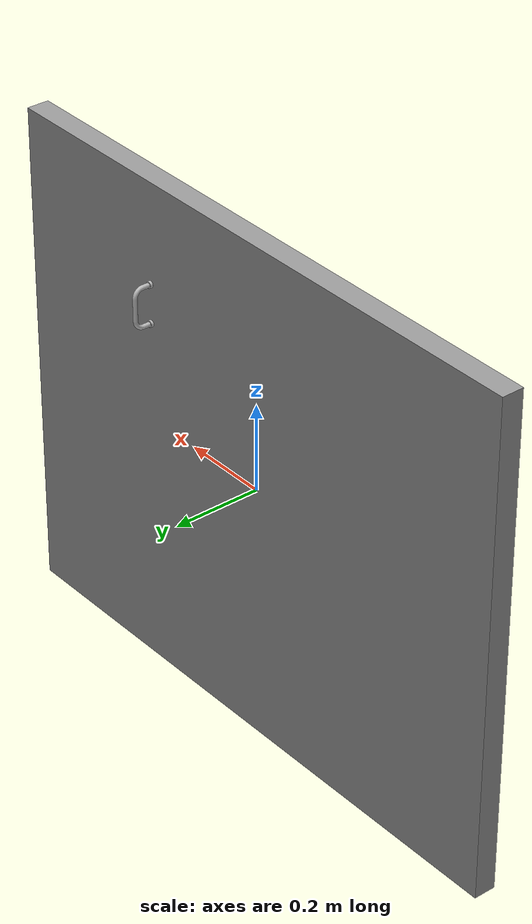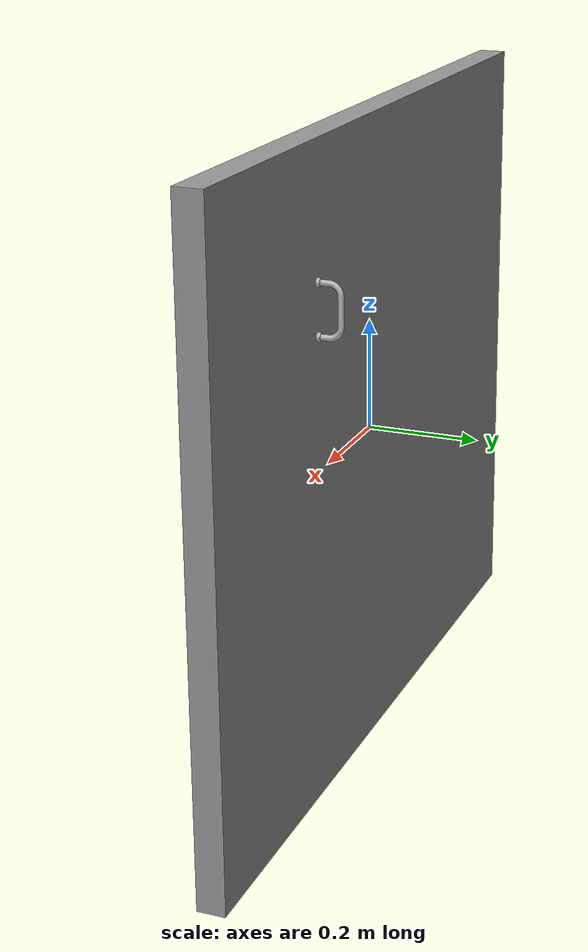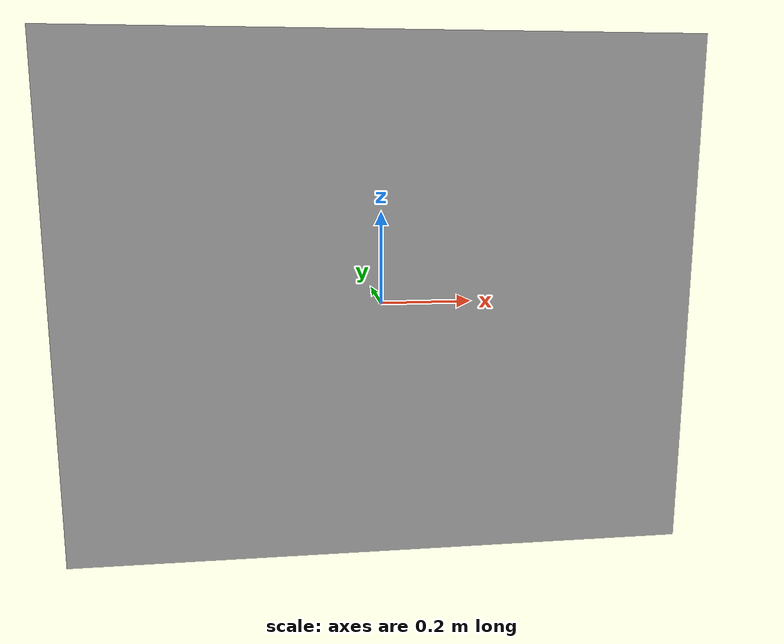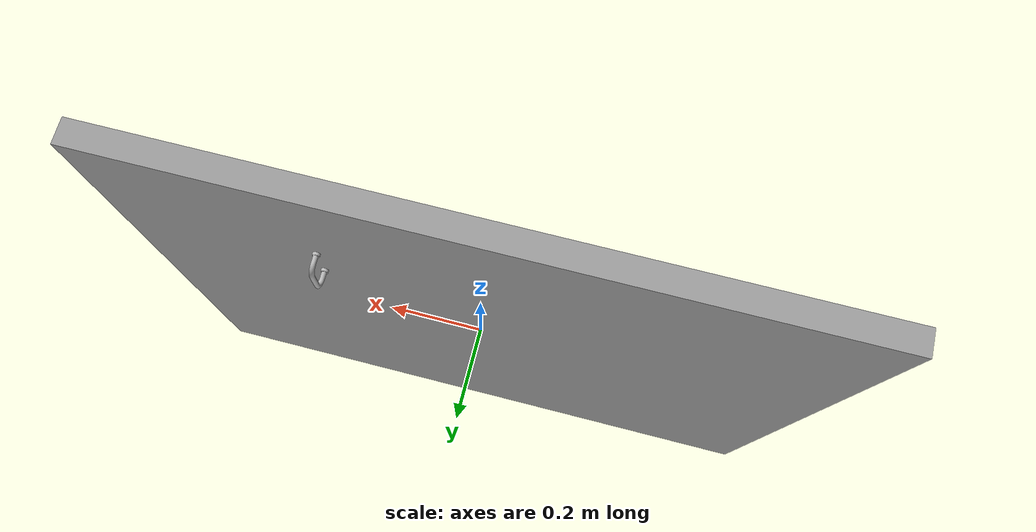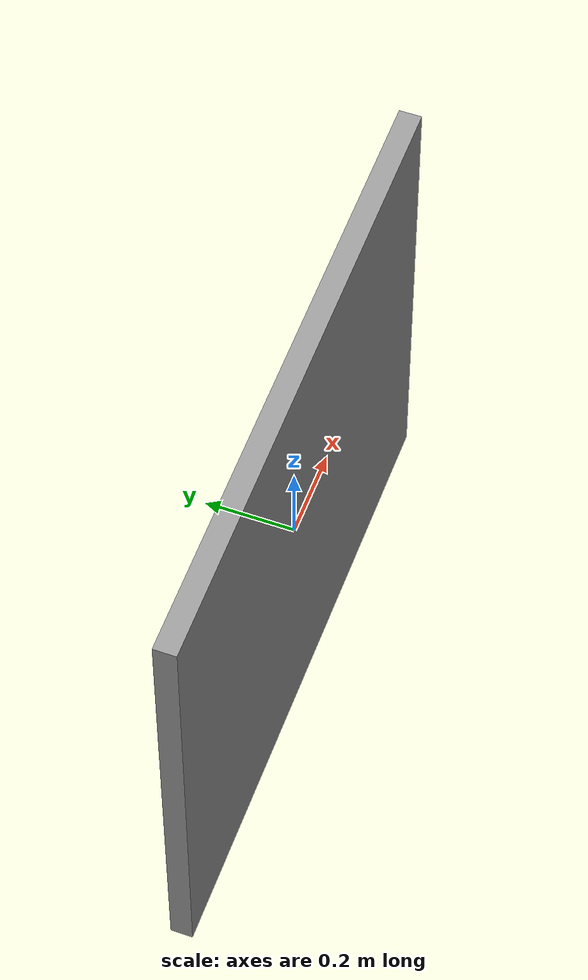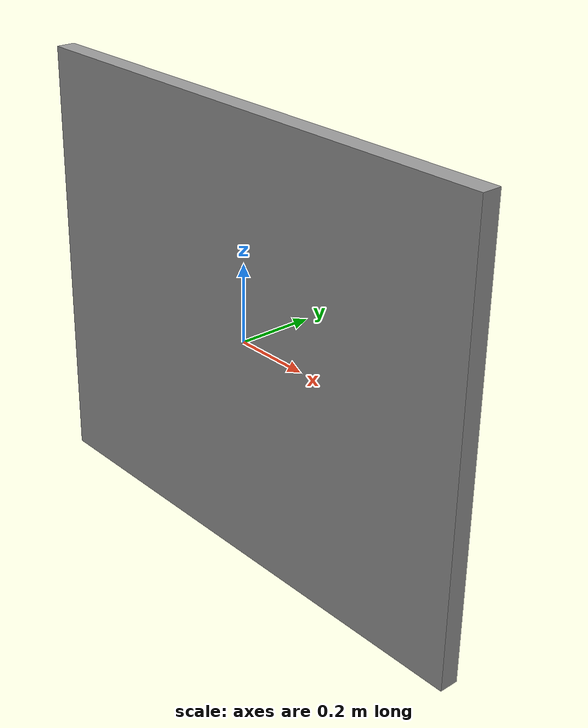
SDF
<?xml version='1.0'?>
<sdf version='1.6'>
  <model name='pull_box'>
    <link name='link_0'>
      <inertial>
        <mass>1</mass>
        <inertia>
          <ixx>0.166667</ixx>
          <ixy>0</ixy>
          <ixz>0</ixz>
          <iyy>0.166667</iyy>
          <iyz>0</iyz>
          <izz>0.166667</izz>
        </inertia>
      </inertial>
      <pose frame=''>-0 4e-06 0 0 -0 0</pose>
      <visual name='visual'>
        <pose frame=''>0 0 0 0 -0 0</pose>
        <geometry>
          <box>
            <size>1.4 0.05 1.15</size>
          </box>
        </geometry>
        <material>
          <lighting>1</lighting>
          <script>
            <uri>file://media/materials/scripts/gazebo.material</uri>
            <name>Gazebo/Grey</name>
          </script>
          <shader type='pixel'/>
        </material>
        <transparency>0</transparency>
        <cast_shadows>1</cast_shadows>
      </visual>
      <collision name='collision'>
        <laser_retro>0</laser_retro>
        <max_contacts>10</max_contacts>
        <pose frame=''>0 0 0 0 -0 0</pose>
        <geometry>
          <box>
            <size>1.4 0.05 1.15</size>
          </box>
        </geometry>
        <surface>
          <friction>
            <ode>
              <mu>1</mu>
              <mu2>1</mu2>
              <fdir1>0 0 0</fdir1>
              <slip1>0</slip1>
              <slip2>0</slip2>
            </ode>
            <torsional>
              <coefficient>1</coefficient>
              <patch_radius>0</patch_radius>
              <surface_radius>0</surface_radius>
              <use_patch_radius>1</use_patch_radius>
              <ode>
                <slip>0</slip>
              </ode>
            </torsional>
          </friction>
          <bounce>
            <restitution_coefficient>0</restitution_coefficient>
            <threshold>1e+06</threshold>
          </bounce>
          <contact>
            <collide_without_contact>0</collide_without_contact>
            <collide_without_contact_bitmask>1</collide_without_contact_bitmask>
            <collide_bitmask>1</collide_bitmask>
            <ode>
              <soft_cfm>0</soft_cfm>
              <soft_erp>0.2</soft_erp>
              <kp>1e+13</kp>
              <kd>1</kd>
              <max_vel>0.01</max_vel>
              <min_depth>0</min_depth>
            </ode>
            <bullet>
              <split_impulse>1</split_impulse>
              <split_impulse_penetration_threshold>-0.01</split_impulse_penetration_threshold>
              <soft_cfm>0</soft_cfm>
              <soft_erp>0.2</soft_erp>
              <kp>1e+13</kp>
              <kd>1</kd>
            </bullet>
          </contact>
        </surface>
      </collision>
    </link>
    <static>0</static>
    <allow_auto_disable>1</allow_auto_disable>

    <link name="knob">
      <inertial>
        <!-- Volume -->
        <mass> 0.1 </mass>
        <!-- Center of mass: -->
        <pose>0.3 0.065 0.3 0 0 0</pose>

        <inertia>
          <ixx>3.67206</ixx>
          <ixy>0</ixy>
          <ixz>0</ixz>
          <iyy>3.67206</iyy>
          <iyz>0</iyz>
          <izz>0.0137445</izz>
        </inertia>

      </inertial>
      <pose>0.3 0.065 0.3 0 0 0</pose>
        <visual name="visual">
          <pose frame=''>0 -0.04 0 1.57 0 3.14</pose>
          <geometry>
            <mesh><uri>model://door/door_puller_knob.dae</uri></mesh>
          </geometry>
        </visual>

        <collision name="collision">
          <pose frame=''>0 -0.04 0 1.57 0 3.14</pose>
          <geometry>
            <mesh><uri>model://door/door_puller_knob.dae</uri></mesh>
          </geometry>
          <max_contacts>10</max_contacts>
          <surface>
            <friction>
              <ode>
                <mu>0.8</mu>
                <mu2>0.8</mu2>
                <slip1>0</slip1>
                <slip2>0</slip2>
              </ode>
              <torsional>
                <ode/>
              </torsional>
            </friction>
            <contact>
              <ode>
                <kp>1000000.0</kp>
                <kd>1.0</kd>
                <max_vel>0.0</max_vel>
              </ode>
            </contact>
          </surface>
        </collision>
    </link>

    <joint name='knob_link' type='fixed'>
      <parent>link_0</parent>
      <child>knob</child>
      <pose frame=''>0 0 0 0 0 0</pose>
      <axis>
        <xyz>0 0 1</xyz>
        <dynamics/>
      </axis>
    </joint>

  </model>
</sdf>
